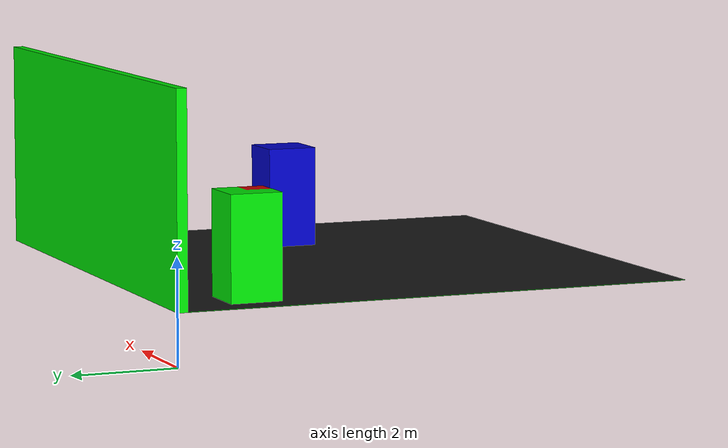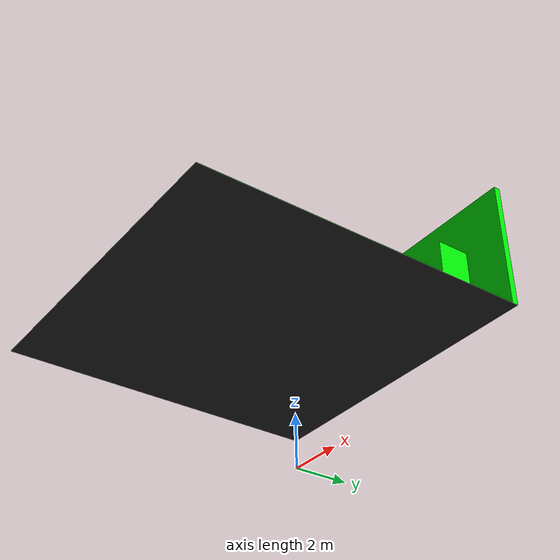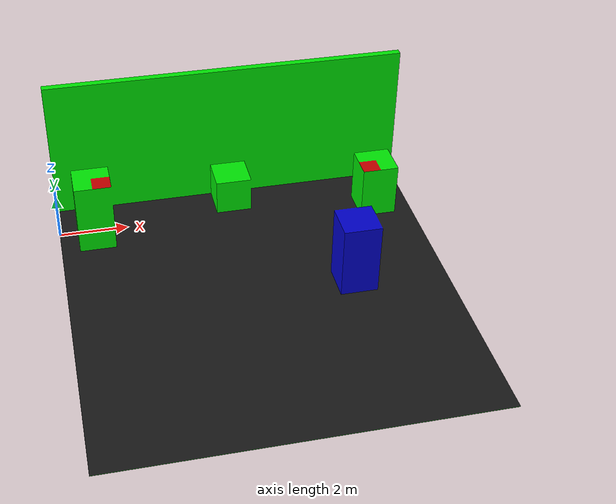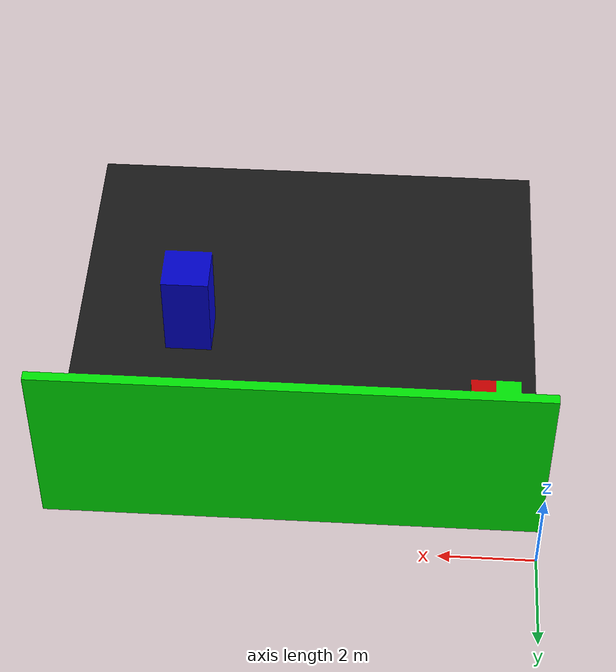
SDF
<?xml version="1.0" ?>
<sdf version="1.7">
  <model name="Arena_KRTI_2021">
    <pose>0 0 1 0 0 0</pose>
    <static>true</static>
    <link name="link">
      <collision name="collision">
        <geometry>
          <mesh>
            <uri>model://ArenaKRTI/meshes/ArenaKRTI.dae</uri>
          </mesh>
        </geometry>
      </collision>

      <visual name="visual">
        <geometry>
          <mesh>
            <uri>model://ArenaKRTI/meshes/ArenaKRTI.dae</uri>
          </mesh>
        </geometry>
      </visual>
    </link>
  </model>
</sdf>
